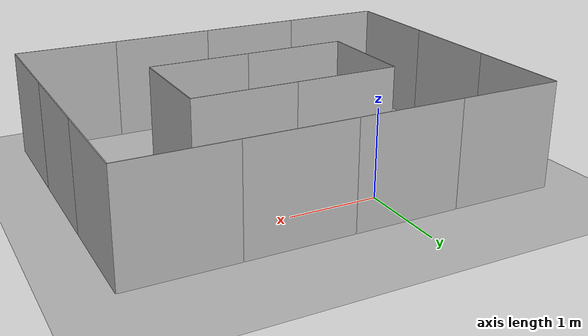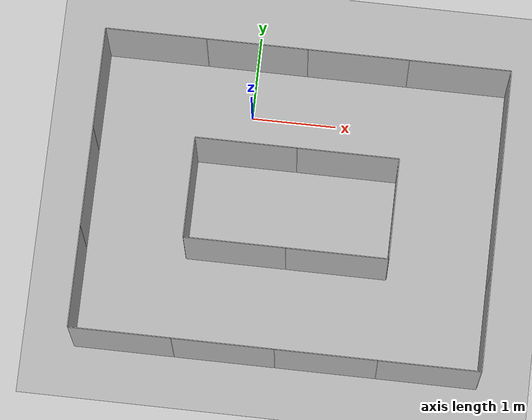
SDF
<?xml version="1.0" encoding="UTF-8" ?>
<sdf version="1.4">
  <world name="default">
    <scene>
      <ambient>0.5 0.5 0.5 1</ambient>
      <background>0.5 0.5 0.5 1</background>
      <shadows>false</shadows>
    </scene>
    <physics type="ode">
      <gravity>0 0 -9.81</gravity>
      <ode>
        <solver>
          <type>quick</type>
          <iters>10</iters>
          <sor>1.3</sor>
        </solver>
        <constraints>
          <cfm>0.0</cfm>
          <erp>0.2</erp>
          <contact_max_correcting_vel>100.0</contact_max_correcting_vel>
          <contact_surface_layer>0.001</contact_surface_layer>
        </constraints>
      </ode>
      <real_time_update_rate>1000</real_time_update_rate>
      <max_step_size>0.001</max_step_size>
    </physics>
    <light type="directional" name="directional_light_1">
      <cast_shadows>false</cast_shadows>
      <pose>0 0 30 0.1 0.1 0</pose>
      <diffuse>1.0 1.0 1.0 1</diffuse>
      <specular>.1 .1 .1 1</specular>
      <attenuation>
        <range>300</range>
      </attenuation>
      <direction>0.1 0.1 -1</direction>
    </light>
    <model name="plane_model">
      <static>true</static>
      <link name="plane_model_link">
        <collision name="plane_model_collision">
          <geometry>
            <plane>
              <normal>0 0 1</normal>
            </plane>
          </geometry>
          <surface>
            <friction>
              <ode>
                <mu>10.0</mu>
                <mu2>10.0</mu2>
                <fdir1>0 0 0</fdir1>
                <slip1>0</slip1>
                <slip2>0</slip2>
              </ode>
            </friction>
            <bounce>
              <restitution_coefficient>0</restitution_coefficient>
              <threshold>1000000.0</threshold>
            </bounce>
            <contact>
              <ode>
                <soft_cfm>0</soft_cfm>
                <soft_erp>0.2</soft_erp>
                <kp>1e10</kp>
                <kd>1</kd>
                <max_vel>100.0</max_vel>
                <min_depth>0.0001</min_depth>
              </ode>
            </contact>
          </surface>
        </collision>
        <visual name="plane_model_visual">
          <cast_shadows>false</cast_shadows>
          <geometry>
            <mesh>
              <uri>model://ground_plane/ground_plane.dae</uri>
              <scale>1 1 1</scale>
            </mesh>
          </geometry>
        </visual>
      </link>
    </model>

     <model name="small_wall_58">
      <static>true</static>
      <link name="small_wall_58_link">
        <pose>1.2 -1.2 0 0 0 -3.14159</pose>
        <collision name="small_wall_58_collision">
          <geometry>
            <mesh>
              <uri>model://small_wall/meshes/small_wall.dae</uri>
              <scale>1 1 1</scale>
            </mesh>
          </geometry>
        </collision>
        <visual name="small_wall_58_visual">
          <cast_shadows>false</cast_shadows>
          <geometry>
            <mesh>
              <uri>model://small_wall/meshes/small_wall.dae</uri>
              <scale>1 1 1</scale>
            </mesh>
          </geometry>
        </visual>
      </link>
    </model>

     <model name="small_wall_59">
      <static>true</static>
      <link name="small_wall_59_link">
        <pose>0 -1.2 0 0 0 -3.14159</pose>
        <collision name="small_wall_59_collision">
          <geometry>
            <mesh>
              <uri>model://small_wall/meshes/small_wall.dae</uri>
              <scale>1 1 1</scale>
            </mesh>
          </geometry>
        </collision>
        <visual name="small_wall_59_visual">
          <cast_shadows>false</cast_shadows>
          <geometry>
            <mesh>
              <uri>model://small_wall/meshes/small_wall.dae</uri>
              <scale>1 1 1</scale>
            </mesh>
          </geometry>
        </visual>
      </link>
    </model>

    <model name="small_wall_60">
      <static>true</static>
      <link name="small_wall_60_link">
        <pose>0 -1.2 0 0 0 -4.71239</pose>
        <collision name="small_wall_60_collision">
          <geometry>
            <mesh>
              <uri>model://small_wall/meshes/small_wall.dae</uri>
              <scale>1 1 1</scale>
            </mesh>
          </geometry>
        </collision>
        <visual name="small_wall_60_visual">
          <cast_shadows>false</cast_shadows>
          <geometry>
            <mesh>
              <uri>model://small_wall/meshes/small_wall.dae</uri>
              <scale>1 1 1</scale>
            </mesh>
          </geometry>
        </visual>
      </link>
    </model>

   <model name="small_wall_61">
      <static>true</static>
      <link name="small_wall_61_link">
        <pose>-1.2 1.2 0 0 0 -3.14159</pose>
        <collision name="small_wall_61_collision">
          <geometry>
            <mesh>
              <uri>model://small_wall/meshes/small_wall.dae</uri>
              <scale>1 1 1</scale>
            </mesh>
          </geometry>
        </collision>
        <visual name="small_wall_61_visual">
          <cast_shadows>false</cast_shadows>
          <geometry>
            <mesh>
              <uri>model://small_wall/meshes/small_wall.dae</uri>
              <scale>1 1 1</scale>
            </mesh>
          </geometry>
        </visual>
      </link>
    </model>

    <model name="small_wall_62">
      <static>true</static>
      <link name="small_wall_62_link">
        <pose>0 1.2 0 0 0 -3.14159</pose>
        <collision name="small_wall_62_collision">
          <geometry>
            <mesh>
              <uri>model://small_wall/meshes/small_wall.dae</uri>
              <scale>1 1 1</scale>
            </mesh>
          </geometry>
        </collision>
        <visual name="small_wall_62_visual">
          <cast_shadows>false</cast_shadows>
          <geometry>
            <mesh>
              <uri>model://small_wall/meshes/small_wall.dae</uri>
              <scale>1 1 1</scale>
            </mesh>
          </geometry>
        </visual>
      </link>
    </model>
    <model name="small_wall_63">
      <static>true</static>
      <link name="small_wall_63_link">
        <pose>1.2 1.2 0 0 0 -3.14159</pose>
        <collision name="small_wall_63_collision">
          <geometry>
            <mesh>
              <uri>model://small_wall/meshes/small_wall.dae</uri>
              <scale>1 1 1</scale>
            </mesh>
          </geometry>
        </collision>
        <visual name="small_wall_63_visual">
          <cast_shadows>false</cast_shadows>
          <geometry>
            <mesh>
              <uri>model://small_wall/meshes/small_wall.dae</uri>
              <scale>1 1 1</scale>
            </mesh>
          </geometry>
        </visual>
      </link>
    </model>
    <model name="small_wall_64">
      <static>true</static>
      <link name="small_wall_64_link">
        <pose>0 0 0 0 0 -3.14159</pose>
        <collision name="small_wall_64_collision">
          <geometry>
            <mesh>
              <uri>model://small_wall/meshes/small_wall.dae</uri>
              <scale>1 1 1</scale>
            </mesh>
          </geometry>
        </collision>
        <visual name="small_wall_64_visual">
          <cast_shadows>false</cast_shadows>
          <geometry>
            <mesh>
              <uri>model://small_wall/meshes/small_wall.dae</uri>
              <scale>1 1 1</scale>
            </mesh>
          </geometry>
        </visual>
      </link>
    </model>
    <model name="small_wall_65">
      <static>true</static>
      <link name="small_wall_65_link">
        <pose>1.2 0 0 0 0 -3.14159</pose>
        <collision name="small_wall_65_collision">
          <geometry>
            <mesh>
              <uri>model://small_wall/meshes/small_wall.dae</uri>
              <scale>1 1 1</scale>
            </mesh>
          </geometry>
        </collision>
        <visual name="small_wall_65_visual">
          <cast_shadows>false</cast_shadows>
          <geometry>
            <mesh>
              <uri>model://small_wall/meshes/small_wall.dae</uri>
              <scale>1 1 1</scale>
            </mesh>
          </geometry>
        </visual>
      </link>
    </model>
    <model name="small_wall_66">
      <static>true</static>
      <link name="small_wall_66_link">
        <pose>2.4 -1.2 0 0 0 -4.71239</pose>
        <collision name="small_wall_66_collision">
          <geometry>
            <mesh>
              <uri>model://small_wall/meshes/small_wall.dae</uri>
              <scale>1 1 1</scale>
            </mesh>
          </geometry>
        </collision>
        <visual name="small_wall_66_visual">
          <cast_shadows>false</cast_shadows>
          <geometry>
            <mesh>
              <uri>model://small_wall/meshes/small_wall.dae</uri>
              <scale>1 1 1</scale>
            </mesh>
          </geometry>
        </visual>
      </link>
    </model>
    <model name="small_wall_67">
      <static>true</static>
      <link name="small_wall_67_link">
        <pose>2.4 -1.2 0 0 0 -1.5708</pose>
        <collision name="small_wall_67_collision">
          <geometry>
            <mesh>
              <uri>model://small_wall/meshes/small_wall.dae</uri>
              <scale>1 1 1</scale>
            </mesh>
          </geometry>
        </collision>
        <visual name="small_wall_67_visual">
          <cast_shadows>false</cast_shadows>
          <geometry>
            <mesh>
              <uri>model://small_wall/meshes/small_wall.dae</uri>
              <scale>1 1 1</scale>
            </mesh>
          </geometry>
        </visual>
      </link>
    </model>

    <model name="small_wall_68">
      <static>true</static>
      <link name="small_wall_68_link">
        <pose>2.4 0 0 0 0 -1.5708</pose>
        <collision name="small_wall_68_collision">
          <geometry>
            <mesh>
              <uri>model://small_wall/meshes/small_wall.dae</uri>
              <scale>1 1 1</scale>
            </mesh>
          </geometry>
        </collision>
        <visual name="small_wall_68_visual">
          <cast_shadows>false</cast_shadows>
          <geometry>
            <mesh>
              <uri>model://small_wall/meshes/small_wall.dae</uri>
              <scale>1 1 1</scale>
            </mesh>
          </geometry>
        </visual>
      </link>
    </model>

    <model name="small_wall_70">
      <static>true</static>
      <link name="small_wall_70_link">
        <pose>2.4 1.2 0 0 0 -3.14159</pose>
        <collision name="small_wall_70_collision">
          <geometry>
            <mesh>
              <uri>model://small_wall/meshes/small_wall.dae</uri>
              <scale>1 1 1</scale>
            </mesh>
          </geometry>
        </collision>
        <visual name="small_wall_70_visual">
          <cast_shadows>false</cast_shadows>
          <geometry>
            <mesh>
              <uri>model://small_wall/meshes/small_wall.dae</uri>
              <scale>1 1 1</scale>
            </mesh>
          </geometry>
        </visual>
      </link>
    </model>

    <model name="small_wall_69">
      <static>true</static>
      <link name="small_wall_69_link">
        <pose>2.4 -2.4 0 0 0 -1.5708</pose>
        <collision name="small_wall_69_collision">
          <geometry>
            <mesh>
              <uri>model://small_wall/meshes/small_wall.dae</uri>
              <scale>1 1 1</scale>
            </mesh>
          </geometry>
        </collision>
        <visual name="small_wall_69_visual">
          <cast_shadows>false</cast_shadows>
          <geometry>
            <mesh>
              <uri>model://small_wall/meshes/small_wall.dae</uri>
              <scale>1 1 1</scale>
            </mesh>
          </geometry>
        </visual>
      </link>
    </model>

    <model name="small_wall_79">
      <static>true</static>
      <link name="small_wall_79_link">
        <pose>-2.4 0 0 0 0 -1.5708</pose>
        <collision name="small_wall_79_collision">
          <geometry>
            <mesh>
              <uri>model://small_wall/meshes/small_wall.dae</uri>
              <scale>1 1 1</scale>
            </mesh>
          </geometry>
        </collision>
        <visual name="small_wall_79_visual">
          <cast_shadows>false</cast_shadows>
          <geometry>
            <mesh>
              <uri>model://small_wall/meshes/small_wall.dae</uri>
              <scale>1 1 1</scale>
            </mesh>
          </geometry>
        </visual>
      </link>
    </model>
    <model name="small_wall_89">
      <static>true</static>
      <link name="small_wall_89_link">
        <pose>-1.2 -1.2 0 0 0 -4.71239</pose>
        <collision name="small_wall_89_collision">
          <geometry>
            <mesh>
              <uri>model://small_wall/meshes/small_wall.dae</uri>
              <scale>1 1 1</scale>
            </mesh>
          </geometry>
        </collision>
        <visual name="small_wall_89_visual">
          <cast_shadows>false</cast_shadows>
          <geometry>
            <mesh>
              <uri>model://small_wall/meshes/small_wall.dae</uri>
              <scale>1 1 1</scale>
            </mesh>
          </geometry>
        </visual>
      </link>
    </model>

    <model name="small_wall_90">
      <static>true</static>
      <link name="small_wall_90_link">
        <pose>-1.2 -2.4 0 0 0 -4.71239</pose>
        <collision name="small_wall_90_collision">
          <geometry>
            <mesh>
              <uri>model://small_wall/meshes/small_wall.dae</uri>
              <scale>1 1 1</scale>
            </mesh>
          </geometry>
        </collision>
        <visual name="small_wall_90_visual">
          <cast_shadows>false</cast_shadows>
          <geometry>
            <mesh>
              <uri>model://small_wall/meshes/small_wall.dae</uri>
              <scale>1 1 1</scale>
            </mesh>
          </geometry>
        </visual>
      </link>
    </model>

    <model name="small_wall_91">
      <static>true</static>
      <link name="small_wall_91_link">
        <pose>0 -2.4 0 0 0 -3.14159</pose>
        <collision name="small_wall_91_collision">
          <geometry>
            <mesh>
              <uri>model://small_wall/meshes/small_wall.dae</uri>
              <scale>1 1 1</scale>
            </mesh>
          </geometry>
        </collision>
        <visual name="small_wall_91_visual">
          <cast_shadows>false</cast_shadows>
          <geometry>
            <mesh>
              <uri>model://small_wall/meshes/small_wall.dae</uri>
              <scale>1 1 1</scale>
            </mesh>
          </geometry>
        </visual>
      </link>
    </model>

    <model name="small_wall_92">
      <static>true</static>
      <link name="small_wall_92_link">
        <pose>1.2 -2.4 0 0 0 -3.14159</pose>
        <collision name="small_wall_92_collision">
          <geometry>
            <mesh>
              <uri>model://small_wall/meshes/small_wall.dae</uri>
              <scale>1 1 1</scale>
            </mesh>
          </geometry>
        </collision>
        <visual name="small_wall_92_visual">
          <cast_shadows>false</cast_shadows>
          <geometry>
            <mesh>
              <uri>model://small_wall/meshes/small_wall.dae</uri>
              <scale>1 1 1</scale>
            </mesh>
          </geometry>
        </visual>
      </link>
    </model>
    <model name="small_wall_93">
      <static>true</static>
      <link name="small_wall_93_link">
        <pose>2.4 -2.4 0 0 0 -3.14159</pose>
        <collision name="small_wall_93_collision">
          <geometry>
            <mesh>
              <uri>model://small_wall/meshes/small_wall.dae</uri>
              <scale>1 1 1</scale>
            </mesh>
          </geometry>
        </collision>
        <visual name="small_wall_93_visual">
          <cast_shadows>false</cast_shadows>
          <geometry>
            <mesh>
              <uri>model://small_wall/meshes/small_wall.dae</uri>
              <scale>1 1 1</scale>
            </mesh>
          </geometry>
        </visual>
      </link>
    </model>

    <model name="small_wall_150">
      <static>true</static>
      <link name="small_wall_150_link">
        <pose>-1.2 -2.4 0 0 0 -3.14159</pose>
        <collision name="small_wall_150_collision">
          <geometry>
            <mesh>
              <uri>model://small_wall/meshes/small_wall.dae</uri>
              <scale>1 1 1</scale>
            </mesh>
          </geometry>
        </collision>
        <visual name="small_wall_150_visual">
          <cast_shadows>false</cast_shadows>
          <geometry>
            <mesh>
              <uri>model://small_wall/meshes/small_wall.dae</uri>
              <scale>1 1 1</scale>
            </mesh>
          </geometry>
        </visual>
      </link>
    </model>
  </world>
</sdf>
